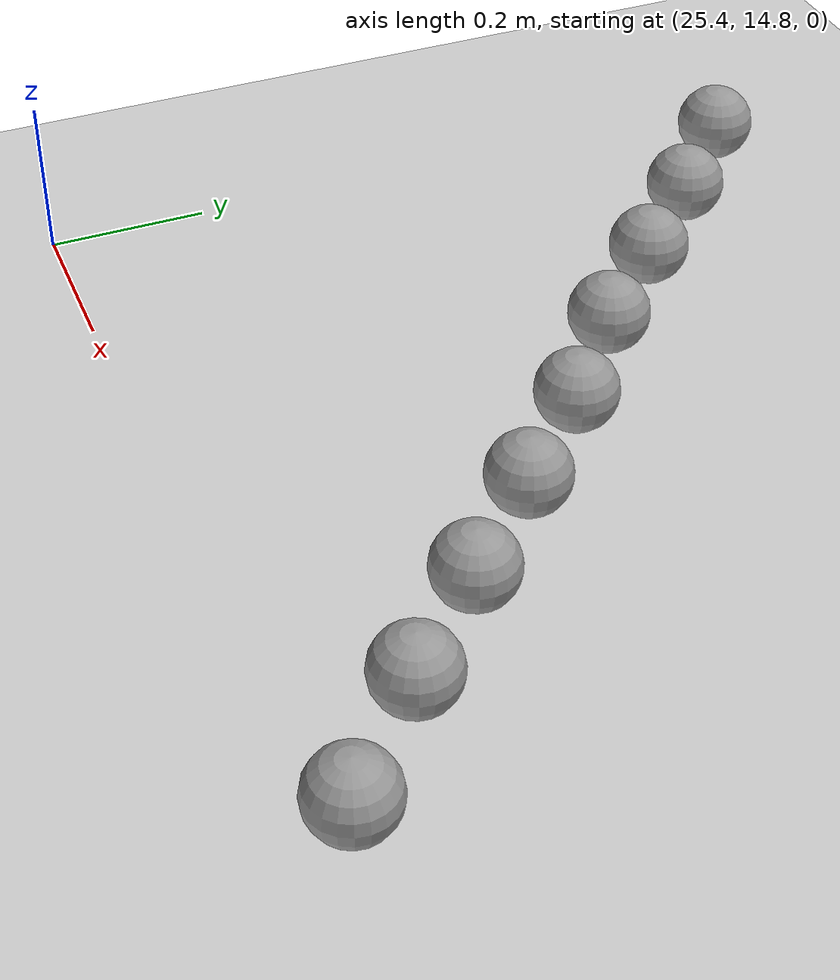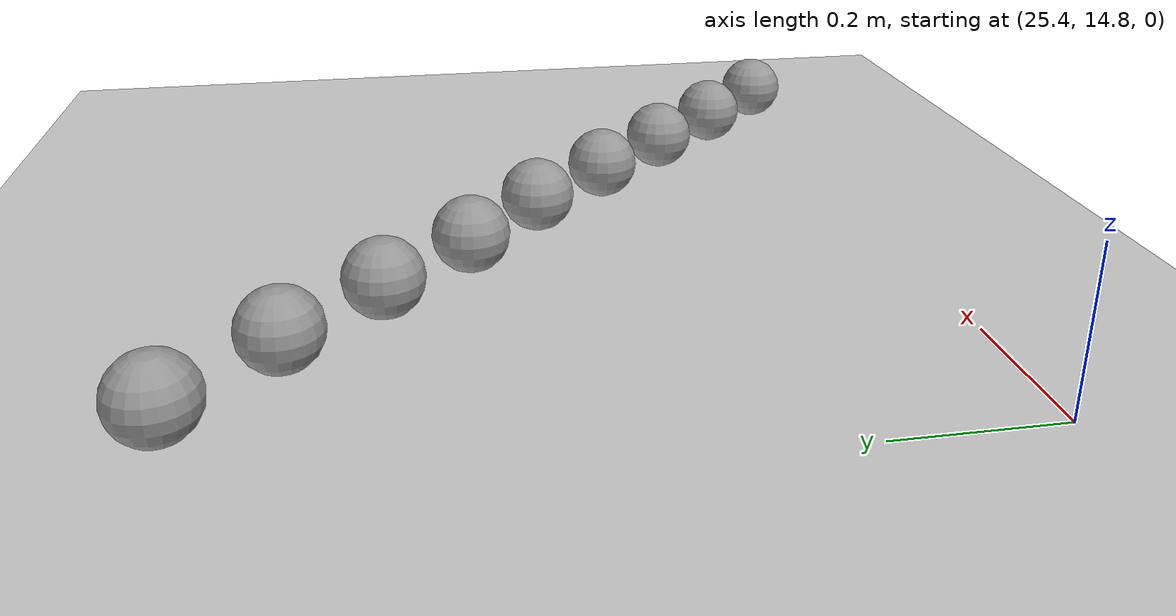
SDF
<sdf version="1.6">
 <world name="default">
  <model name="ground_plane">
   <static>1</static>
   <link name="link">
    <collision name="collision">
     <geometry><plane><normal>0 0 1</normal><size>100 100</size></plane></geometry>
     <surface><friction><ode><mu>100</mu><mu2>50</mu2></ode></friction></surface>
    </collision>
    <visual name="visual">
     <cast_shadows>0</cast_shadows>
     <geometry><plane><normal>0 0 1</normal><size>100 100</size></plane></geometry>
     <material>
      <script><uri>file://media/materials/scripts/gazebo.material</uri><name>Gazebo/Grey</name></script>
     </material>
    </visual>
   </link>
  </model>
  <model name="unit_sphere_0_211">
   <pose>25.520000 15.700000 0.050000 0 -0 0</pose>
   <link name="link">
    <inertial>
     <mass>1</mass>
     <inertia><ixx>0.1</ixx><ixy>0</ixy><ixz>0</ixz><iyy>0.1</iyy><iyz>0</iyz><izz>0.1</izz></inertia>
    </inertial>
    <collision name="collision"><geometry><sphere><radius>0.050000</radius></sphere></geometry></collision>
    <visual name="visual">
     <geometry><sphere><radius>0.050000</radius></sphere></geometry>
     <material>
      <script><name>Gazebo/Grey</name><uri>file://media/materials/scripts/gazebo.material</uri></script>
     </material>
    </visual>
   </link>
  </model>
  <model name="unit_sphere_0_212">
   <pose>25.640000 15.590000 0.050000 0 -0 0</pose>
   <link name="link">
    <inertial>
     <mass>1</mass>
     <inertia><ixx>0.1</ixx><ixy>0</ixy><ixz>0</ixz><iyy>0.1</iyy><iyz>0</iyz><izz>0.1</izz></inertia>
    </inertial>
    <collision name="collision"><geometry><sphere><radius>0.050000</radius></sphere></geometry></collision>
    <visual name="visual">
     <geometry><sphere><radius>0.050000</radius></sphere></geometry>
     <material>
      <script><name>Gazebo/Grey</name><uri>file://media/materials/scripts/gazebo.material</uri></script>
     </material>
    </visual>
   </link>
  </model>
  <model name="unit_sphere_0_213">
   <pose>25.750000 15.480000 0.050000 0 -0 0</pose>
   <link name="link">
    <inertial>
     <mass>1</mass>
     <inertia><ixx>0.1</ixx><ixy>0</ixy><ixz>0</ixz><iyy>0.1</iyy><iyz>0</iyz><izz>0.1</izz></inertia>
    </inertial>
    <collision name="collision"><geometry><sphere><radius>0.050000</radius></sphere></geometry></collision>
    <visual name="visual">
     <geometry><sphere><radius>0.050000</radius></sphere></geometry>
     <material>
      <script><name>Gazebo/Grey</name><uri>file://media/materials/scripts/gazebo.material</uri></script>
     </material>
    </visual>
   </link>
  </model>
  <model name="unit_sphere_0_214">
   <pose>25.860000 15.370000 0.050000 0 -0 0</pose>
   <link name="link">
    <inertial>
     <mass>1</mass>
     <inertia><ixx>0.1</ixx><ixy>0</ixy><ixz>0</ixz><iyy>0.1</iyy><iyz>0</iyz><izz>0.1</izz></inertia>
    </inertial>
    <collision name="collision"><geometry><sphere><radius>0.050000</radius></sphere></geometry></collision>
    <visual name="visual">
     <geometry><sphere><radius>0.050000</radius></sphere></geometry>
     <material>
      <script><name>Gazebo/Grey</name><uri>file://media/materials/scripts/gazebo.material</uri></script>
     </material>
    </visual>
   </link>
  </model>
  <model name="unit_sphere_0_215">
   <pose>25.980000 15.270000 0.050000 0 -0 0</pose>
   <link name="link">
    <inertial>
     <mass>1</mass>
     <inertia><ixx>0.1</ixx><ixy>0</ixy><ixz>0</ixz><iyy>0.1</iyy><iyz>0</iyz><izz>0.1</izz></inertia>
    </inertial>
    <collision name="collision"><geometry><sphere><radius>0.050000</radius></sphere></geometry></collision>
    <visual name="visual">
     <geometry><sphere><radius>0.050000</radius></sphere></geometry>
     <material>
      <script><name>Gazebo/Grey</name><uri>file://media/materials/scripts/gazebo.material</uri></script>
     </material>
    </visual>
   </link>
  </model>
  <model name="unit_sphere_0_216">
   <pose>26.090000 15.160000 0.050000 0 -0 0</pose>
   <link name="link">
    <inertial>
     <mass>1</mass>
     <inertia><ixx>0.1</ixx><ixy>0</ixy><ixz>0</ixz><iyy>0.1</iyy><iyz>0</iyz><izz>0.1</izz></inertia>
    </inertial>
    <collision name="collision"><geometry><sphere><radius>0.050000</radius></sphere></geometry></collision>
    <visual name="visual">
     <geometry><sphere><radius>0.050000</radius></sphere></geometry>
     <material>
      <script><name>Gazebo/Grey</name><uri>file://media/materials/scripts/gazebo.material</uri></script>
     </material>
    </visual>
   </link>
  </model>
  <model name="unit_sphere_0_217">
   <pose>26.200000 15.050000 0.050000 0 -0 0</pose>
   <link name="link">
    <inertial>
     <mass>1</mass>
     <inertia><ixx>0.1</ixx><ixy>0</ixy><ixz>0</ixz><iyy>0.1</iyy><iyz>0</iyz><izz>0.1</izz></inertia>
    </inertial>
    <collision name="collision"><geometry><sphere><radius>0.050000</radius></sphere></geometry></collision>
    <visual name="visual">
     <geometry><sphere><radius>0.050000</radius></sphere></geometry>
     <material>
      <script><name>Gazebo/Grey</name><uri>file://media/materials/scripts/gazebo.material</uri></script>
     </material>
    </visual>
   </link>
  </model>
  <model name="unit_sphere_0_218">
   <pose>26.310000 14.940000 0.050000 0 -0 0</pose>
   <link name="link">
    <inertial>
     <mass>1</mass>
     <inertia><ixx>0.1</ixx><ixy>0</ixy><ixz>0</ixz><iyy>0.1</iyy><iyz>0</iyz><izz>0.1</izz></inertia>
    </inertial>
    <collision name="collision"><geometry><sphere><radius>0.050000</radius></sphere></geometry></collision>
    <visual name="visual">
     <geometry><sphere><radius>0.050000</radius></sphere></geometry>
     <material>
      <script><name>Gazebo/Grey</name><uri>file://media/materials/scripts/gazebo.material</uri></script>
     </material>
    </visual>
   </link>
  </model>
  <model name="unit_sphere_0_219">
   <pose>26.430000 14.830000 0.050000 0 -0 0</pose>
   <link name="link">
    <inertial>
     <mass>1</mass>
     <inertia><ixx>0.1</ixx><ixy>0</ixy><ixz>0</ixz><iyy>0.1</iyy><iyz>0</iyz><izz>0.1</izz></inertia>
    </inertial>
    <collision name="collision"><geometry><sphere><radius>0.050000</radius></sphere></geometry></collision>
    <visual name="visual">
     <geometry><sphere><radius>0.050000</radius></sphere></geometry>
     <material>
      <script><name>Gazebo/Grey</name><uri>file://media/materials/scripts/gazebo.material</uri></script>
     </material>
    </visual>
   </link>
  </model>
 </world>
</sdf>
